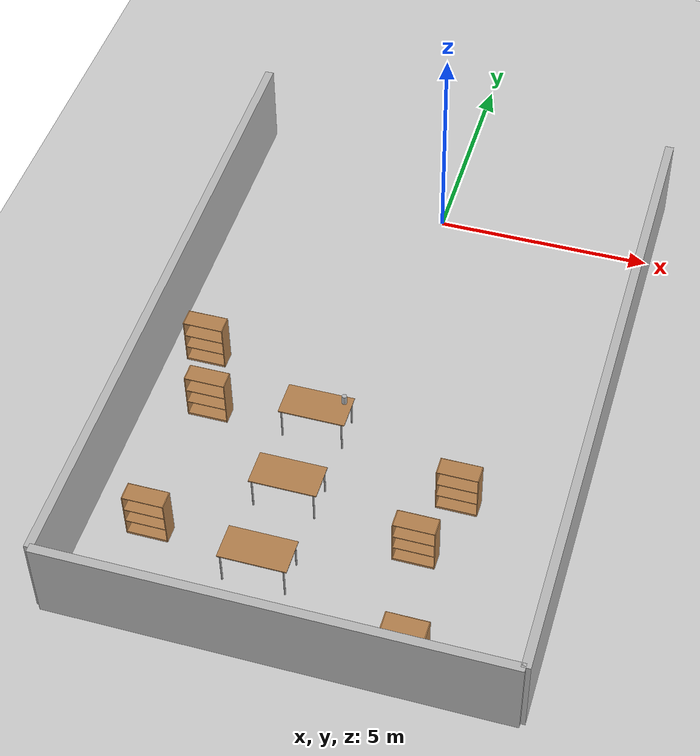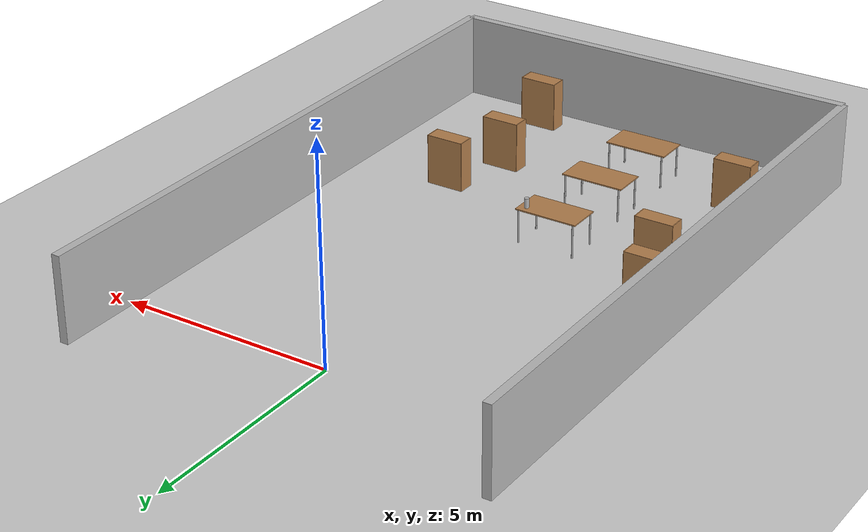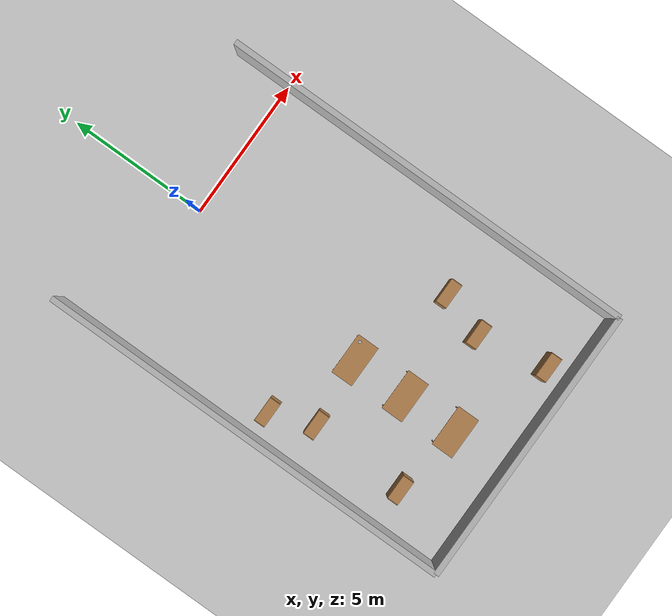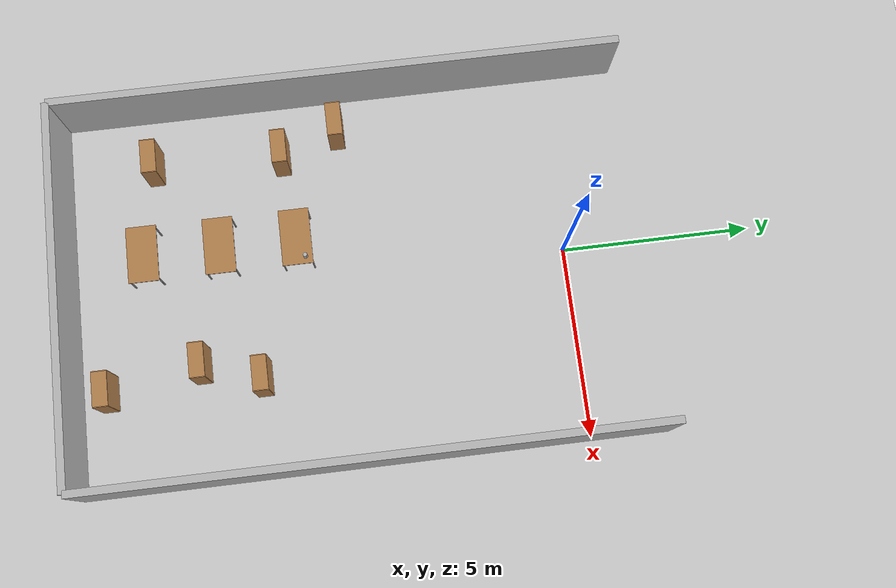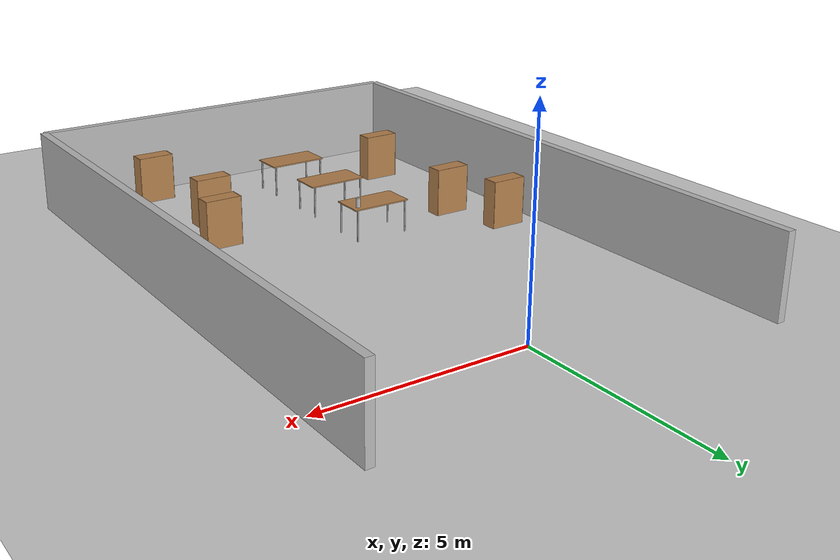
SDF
<sdf version="1.7">
 <world name="default">
  <model name="ground_plane">
   <static>1</static>
   <link name="link">
    <collision name="collision">
     <geometry><plane><normal>0 0 1</normal><size>100 100</size></plane></geometry>
     <surface><friction><ode><mu>100</mu><mu2>50</mu2></ode></friction></surface>
    </collision>
    <visual name="visual">
     <cast_shadows>0</cast_shadows>
     <geometry><plane><normal>0 0 1</normal><size>100 100</size></plane></geometry>
     <material>
      <script><uri>file://media/materials/scripts/gazebo.material</uri><name>Gazebo/Grey</name></script>
     </material>
    </visual>
    <velocity_decay><linear>0</linear><angular>0</angular></velocity_decay>
   </link>
  </model>
  <model name="wall_1_model">
   <pose>0 -13 1 0 -0 0</pose>
   <static>1</static>
   <link name="wall_1_body">
    <inertial>
     <mass>1</mass>
     <inertia><ixx>1</ixx><ixy>0</ixy><ixz>0</ixz><iyy>1</iyy><iyz>0</iyz><izz>1</izz></inertia>
    </inertial>
    <collision name="collision"><geometry><box><size>10 0.2 2</size></box></geometry></collision>
    <visual name="visual"><geometry><box><size>10 0.2 2</size></box></geometry></visual>
    <velocity_decay><linear>0</linear><angular>0</angular></velocity_decay>
   </link>
  </model>
  <model name="wall_3_model">
   <pose>-5 -5.5 1 0 -0 0</pose>
   <static>1</static>
   <link name="wall_3_body">
    <inertial>
     <mass>1</mass>
     <inertia><ixx>1</ixx><ixy>0</ixy><ixz>0</ixz><iyy>1</iyy><iyz>0</iyz><izz>1</izz></inertia>
    </inertial>
    <collision name="collision"><geometry><box><size>0.2 15 2</size></box></geometry></collision>
    <visual name="visual"><geometry><box><size>0.2 15 2</size></box></geometry></visual>
    <velocity_decay><linear>0</linear><angular>0</angular></velocity_decay>
   </link>
  </model>
  <model name="wall_4_model">
   <pose>5 -5.5 1 0 -0 0</pose>
   <static>1</static>
   <link name="wall_4_body">
    <inertial>
     <mass>1</mass>
     <inertia><ixx>1</ixx><ixy>0</ixy><ixz>0</ixz><iyy>1</iyy><iyz>0</iyz><izz>1</izz></inertia>
    </inertial>
    <collision name="collision"><geometry><box><size>0.2 15 2</size></box></geometry></collision>
    <visual name="visual"><geometry><box><size>0.2 15 2</size></box></geometry></visual>
    <velocity_decay><linear>0</linear><angular>0</angular></velocity_decay>
   </link>
  </model>
  <model name="bookshelf">
   <static>0</static>
   <link name="link">
    <inertial>
     <mass>1</mass>
     <inertia><ixx>1</ixx><ixy>0</ixy><ixz>0</ixz><iyy>1</iyy><iyz>0</iyz><izz>1</izz></inertia>
    </inertial>
    <collision name="back">
     <pose>0 0.005 0.6 0 -0 0</pose>
     <geometry><box><size>0.9 0.01 1.2</size></box></geometry>
    </collision>
    <visual name="visual1">
     <pose>0 0.005 0.6 0 -0 0</pose>
     <geometry><box><size>0.9 0.01 1.2</size></box></geometry>
     <material>
      <script><uri>file://media/materials/scripts/gazebo.material</uri><name>Gazebo/Wood</name></script>
     </material>
    </visual>
    <collision name="left_side">
     <pose>0.45 -0.195 0.6 0 -0 0</pose>
     <geometry><box><size>0.02 0.4 1.2</size></box></geometry>
    </collision>
    <visual name="visual2">
     <pose>0.45 -0.195 0.6 0 -0 0</pose>
     <geometry><box><size>0.02 0.4 1.2</size></box></geometry>
     <material>
      <script><uri>file://media/materials/scripts/gazebo.material</uri><name>Gazebo/Wood</name></script>
     </material>
    </visual>
    <collision name="right_side">
     <pose>-0.45 -0.195 0.6 0 -0 0</pose>
     <geometry><box><size>0.02 0.4 1.2</size></box></geometry>
    </collision>
    <visual name="visual3">
     <pose>-0.45 -0.195 0.6 0 -0 0</pose>
     <geometry><box><size>0.02 0.4 1.2</size></box></geometry>
     <material>
      <script><uri>file://media/materials/scripts/gazebo.material</uri><name>Gazebo/Wood</name></script>
     </material>
    </visual>
    <collision name="bottom">
     <pose>0 -0.195 0.03 0 -0 0</pose>
     <geometry><box><size>0.88 0.4 0.06</size></box></geometry>
    </collision>
    <visual name="visual4">
     <pose>0 -0.195 0.03 0 -0 0</pose>
     <geometry><box><size>0.88 0.4 0.06</size></box></geometry>
     <material>
      <script><uri>file://media/materials/scripts/gazebo.material</uri><name>Gazebo/Wood</name></script>
     </material>
    </visual>
    <collision name="top">
     <pose>0 -0.195 1.19 0 -0 0</pose>
     <geometry><box><size>0.88 0.4 0.02</size></box></geometry>
    </collision>
    <visual name="visual5">
     <pose>0 -0.195 1.19 0 -0 0</pose>
     <geometry><box><size>0.88 0.4 0.02</size></box></geometry>
     <material>
      <script><uri>file://media/materials/scripts/gazebo.material</uri><name>Gazebo/Wood</name></script>
     </material>
    </visual>
    <collision name="low_shelf">
     <pose>0 -0.195 0.43 0 -0 0</pose>
     <geometry><box><size>0.88 0.4 0.02</size></box></geometry>
    </collision>
    <visual name="visual6">
     <pose>0 -0.195 0.43 0 -0 0</pose>
     <geometry><box><size>0.88 0.4 0.02</size></box></geometry>
     <material>
      <script><uri>file://media/materials/scripts/gazebo.material</uri><name>Gazebo/Wood</name></script>
     </material>
    </visual>
    <collision name="high_shelf">
     <pose>0 -0.195 0.8 0 -0 0</pose>
     <geometry><box><size>0.88 0.4 0.02</size></box></geometry>
    </collision>
    <visual name="visual7">
     <pose>0 -0.195 0.8 0 -0 0</pose>
     <geometry><box><size>0.88 0.4 0.02</size></box></geometry>
     <material>
      <script><uri>file://media/materials/scripts/gazebo.material</uri><name>Gazebo/Wood</name></script>
     </material>
    </visual>
    <velocity_decay><linear>0</linear><angular>0</angular></velocity_decay>
   </link>
   <pose>2 -9.55401 0 -4e-05 -0 -0</pose>
  </model>
  <model name="table">
   <static>0</static>
   <link name="link">
    <collision name="surface">
     <pose>0 0 0.9 0 -0 0</pose>
     <geometry><box><size>1.5 0.8 0.03</size></box></geometry>
    </collision>
    <visual name="visual1">
     <pose>0 0 0.9 0 -0 0</pose>
     <geometry><box><size>1.5 0.8 0.03</size></box></geometry>
     <material>
      <script><uri>file://media/materials/scripts/gazebo.material</uri><name>Gazebo/Wood</name></script>
     </material>
    </visual>
    <collision name="front_left_leg">
     <pose>0.68 0.38 0.5 0 -0 0</pose>
     <geometry><cylinder><radius>0.02</radius><length>0.8</length></cylinder></geometry>
    </collision>
    <visual name="front_left_leg">
     <pose>0.68 0.38 0.5 0 -0 0</pose>
     <geometry><cylinder><radius>0.02</radius><length>0.8</length></cylinder></geometry>
     <material>
      <script><uri>file://media/materials/scripts/gazebo.material</uri><name>Gazebo/Grey</name></script>
     </material>
    </visual>
    <collision name="front_right_leg">
     <pose>0.68 -0.38 0.5 0 -0 0</pose>
     <geometry><cylinder><radius>0.02</radius><length>0.8</length></cylinder></geometry>
    </collision>
    <visual name="front_right_leg">
     <pose>0.68 -0.38 0.5 0 -0 0</pose>
     <geometry><cylinder><radius>0.02</radius><length>0.8</length></cylinder></geometry>
     <material>
      <script><uri>file://media/materials/scripts/gazebo.material</uri><name>Gazebo/Grey</name></script>
     </material>
    </visual>
    <collision name="back_right_leg">
     <pose>-0.68 -0.38 0.5 0 -0 0</pose>
     <geometry><cylinder><radius>0.02</radius><length>0.8</length></cylinder></geometry>
    </collision>
    <visual name="back_right_leg">
     <pose>-0.68 -0.38 0.5 0 -0 0</pose>
     <geometry><cylinder><radius>0.02</radius><length>0.8</length></cylinder></geometry>
     <material>
      <script><uri>file://media/materials/scripts/gazebo.material</uri><name>Gazebo/Grey</name></script>
     </material>
    </visual>
    <collision name="back_left_leg">
     <pose>-0.68 0.38 0.5 0 -0 0</pose>
     <geometry><cylinder><radius>0.02</radius><length>0.8</length></cylinder></geometry>
    </collision>
    <visual name="back_left_leg">
     <pose>-0.68 0.38 0.5 0 -0 0</pose>
     <geometry><cylinder><radius>0.02</radius><length>0.8</length></cylinder></geometry>
     <material>
      <script><uri>file://media/materials/scripts/gazebo.material</uri><name>Gazebo/Grey</name></script>
     </material>
    </visual>
    <velocity_decay><linear>0</linear><angular>0</angular></velocity_decay>
    <inertial>
     <inertia><ixx>1</ixx><ixy>0</ixy><ixz>0</ixz><iyy>1</iyy><iyz>0</iyz><izz>1</izz></inertia>
     <mass>1</mass>
    </inertial>
   </link>
   <pose>-1 -9.00004 -0.1 0 -0 -0.000188</pose>
  </model>
  <model name="bookshelf_2">
   <static>0</static>
   <link name="link">
    <inertial>
     <mass>1</mass>
     <inertia><ixx>1</ixx><ixy>0</ixy><ixz>0</ixz><iyy>1</iyy><iyz>0</iyz><izz>1</izz></inertia>
    </inertial>
    <collision name="back">
     <pose>0 0.005 0.6 0 -0 0</pose>
     <geometry><box><size>0.9 0.01 1.2</size></box></geometry>
    </collision>
    <visual name="visual1">
     <pose>0 0.005 0.6 0 -0 0</pose>
     <geometry><box><size>0.9 0.01 1.2</size></box></geometry>
     <material>
      <script><uri>file://media/materials/scripts/gazebo.material</uri><name>Gazebo/Wood</name></script>
     </material>
    </visual>
    <collision name="left_side">
     <pose>0.45 -0.195 0.6 0 -0 0</pose>
     <geometry><box><size>0.02 0.4 1.2</size></box></geometry>
    </collision>
    <visual name="visual2">
     <pose>0.45 -0.195 0.6 0 -0 0</pose>
     <geometry><box><size>0.02 0.4 1.2</size></box></geometry>
     <material>
      <script><uri>file://media/materials/scripts/gazebo.material</uri><name>Gazebo/Wood</name></script>
     </material>
    </visual>
    <collision name="right_side">
     <pose>-0.45 -0.195 0.6 0 -0 0</pose>
     <geometry><box><size>0.02 0.4 1.2</size></box></geometry>
    </collision>
    <visual name="visual3">
     <pose>-0.45 -0.195 0.6 0 -0 0</pose>
     <geometry><box><size>0.02 0.4 1.2</size></box></geometry>
     <material>
      <script><uri>file://media/materials/scripts/gazebo.material</uri><name>Gazebo/Wood</name></script>
     </material>
    </visual>
    <collision name="bottom">
     <pose>0 -0.195 0.03 0 -0 0</pose>
     <geometry><box><size>0.88 0.4 0.06</size></box></geometry>
    </collision>
    <visual name="visual4">
     <pose>0 -0.195 0.03 0 -0 0</pose>
     <geometry><box><size>0.88 0.4 0.06</size></box></geometry>
     <material>
      <script><uri>file://media/materials/scripts/gazebo.material</uri><name>Gazebo/Wood</name></script>
     </material>
    </visual>
    <collision name="top">
     <pose>0 -0.195 1.19 0 -0 0</pose>
     <geometry><box><size>0.88 0.4 0.02</size></box></geometry>
    </collision>
    <visual name="visual5">
     <pose>0 -0.195 1.19 0 -0 0</pose>
     <geometry><box><size>0.88 0.4 0.02</size></box></geometry>
     <material>
      <script><uri>file://media/materials/scripts/gazebo.material</uri><name>Gazebo/Wood</name></script>
     </material>
    </visual>
    <collision name="low_shelf">
     <pose>0 -0.195 0.43 0 -0 0</pose>
     <geometry><box><size>0.88 0.4 0.02</size></box></geometry>
    </collision>
    <visual name="visual6">
     <pose>0 -0.195 0.43 0 -0 0</pose>
     <geometry><box><size>0.88 0.4 0.02</size></box></geometry>
     <material>
      <script><uri>file://media/materials/scripts/gazebo.material</uri><name>Gazebo/Wood</name></script>
     </material>
    </visual>
    <collision name="high_shelf">
     <pose>0 -0.195 0.8 0 -0 0</pose>
     <geometry><box><size>0.88 0.4 0.02</size></box></geometry>
    </collision>
    <visual name="visual7">
     <pose>0 -0.195 0.8 0 -0 0</pose>
     <geometry><box><size>0.88 0.4 0.02</size></box></geometry>
     <material>
      <script><uri>file://media/materials/scripts/gazebo.material</uri><name>Gazebo/Wood</name></script>
     </material>
    </visual>
    <velocity_decay><linear>0</linear><angular>0</angular></velocity_decay>
   </link>
   <pose>-3.41849 -7 0 -3.1e-05 -0 -0</pose>
  </model>
  <model name="table_0">
   <static>0</static>
   <link name="link">
    <collision name="surface">
     <pose>0 0 0.9 0 -0 0</pose>
     <geometry><box><size>1.5 0.8 0.03</size></box></geometry>
    </collision>
    <visual name="visual1">
     <pose>0 0 0.9 0 -0 0</pose>
     <geometry><box><size>1.5 0.8 0.03</size></box></geometry>
     <material>
      <script><uri>file://media/materials/scripts/gazebo.material</uri><name>Gazebo/Wood</name></script>
     </material>
    </visual>
    <collision name="front_left_leg">
     <pose>0.68 0.38 0.5 0 -0 0</pose>
     <geometry><cylinder><radius>0.02</radius><length>0.8</length></cylinder></geometry>
    </collision>
    <visual name="front_left_leg">
     <pose>0.68 0.38 0.5 0 -0 0</pose>
     <geometry><cylinder><radius>0.02</radius><length>0.8</length></cylinder></geometry>
     <material>
      <script><uri>file://media/materials/scripts/gazebo.material</uri><name>Gazebo/Grey</name></script>
     </material>
    </visual>
    <collision name="front_right_leg">
     <pose>0.68 -0.38 0.5 0 -0 0</pose>
     <geometry><cylinder><radius>0.02</radius><length>0.8</length></cylinder></geometry>
    </collision>
    <visual name="front_right_leg">
     <pose>0.68 -0.38 0.5 0 -0 0</pose>
     <geometry><cylinder><radius>0.02</radius><length>0.8</length></cylinder></geometry>
     <material>
      <script><uri>file://media/materials/scripts/gazebo.material</uri><name>Gazebo/Grey</name></script>
     </material>
    </visual>
    <collision name="back_right_leg">
     <pose>-0.68 -0.38 0.5 0 -0 0</pose>
     <geometry><cylinder><radius>0.02</radius><length>0.8</length></cylinder></geometry>
    </collision>
    <visual name="back_right_leg">
     <pose>-0.68 -0.38 0.5 0 -0 0</pose>
     <geometry><cylinder><radius>0.02</radius><length>0.8</length></cylinder></geometry>
     <material>
      <script><uri>file://media/materials/scripts/gazebo.material</uri><name>Gazebo/Grey</name></script>
     </material>
    </visual>
    <collision name="back_left_leg">
     <pose>-0.68 0.38 0.5 0 -0 0</pose>
     <geometry><cylinder><radius>0.02</radius><length>0.8</length></cylinder></geometry>
    </collision>
    <visual name="back_left_leg">
     <pose>-0.68 0.38 0.5 0 -0 0</pose>
     <geometry><cylinder><radius>0.02</radius><length>0.8</length></cylinder></geometry>
     <material>
      <script><uri>file://media/materials/scripts/gazebo.material</uri><name>Gazebo/Grey</name></script>
     </material>
    </visual>
    <velocity_decay><linear>0</linear><angular>0</angular></velocity_decay>
    <inertial>
     <inertia><ixx>1</ixx><ixy>0</ixy><ixz>0</ixz><iyy>1</iyy><iyz>0</iyz><izz>1</izz></inertia>
     <mass>1</mass>
    </inertial>
   </link>
   <pose>-1.00005 -6.99855 -0.119424 -0.00203 1.1e-05 -2.2e-05</pose>
  </model>
  <model name="table_1">
   <static>0</static>
   <link name="link">
    <collision name="surface">
     <pose>0 0 0.9 0 -0 0</pose>
     <geometry><box><size>1.5 0.8 0.03</size></box></geometry>
    </collision>
    <visual name="visual1">
     <pose>0 0 0.9 0 -0 0</pose>
     <geometry><box><size>1.5 0.8 0.03</size></box></geometry>
     <material>
      <script><uri>file://media/materials/scripts/gazebo.material</uri><name>Gazebo/Wood</name></script>
     </material>
    </visual>
    <collision name="front_left_leg">
     <pose>0.68 0.38 0.5 0 -0 0</pose>
     <geometry><cylinder><radius>0.02</radius><length>0.8</length></cylinder></geometry>
    </collision>
    <visual name="front_left_leg">
     <pose>0.68 0.38 0.5 0 -0 0</pose>
     <geometry><cylinder><radius>0.02</radius><length>0.8</length></cylinder></geometry>
     <material>
      <script><uri>file://media/materials/scripts/gazebo.material</uri><name>Gazebo/Grey</name></script>
     </material>
    </visual>
    <collision name="front_right_leg">
     <pose>0.68 -0.38 0.5 0 -0 0</pose>
     <geometry><cylinder><radius>0.02</radius><length>0.8</length></cylinder></geometry>
    </collision>
    <visual name="front_right_leg">
     <pose>0.68 -0.38 0.5 0 -0 0</pose>
     <geometry><cylinder><radius>0.02</radius><length>0.8</length></cylinder></geometry>
     <material>
      <script><uri>file://media/materials/scripts/gazebo.material</uri><name>Gazebo/Grey</name></script>
     </material>
    </visual>
    <collision name="back_right_leg">
     <pose>-0.68 -0.38 0.5 0 -0 0</pose>
     <geometry><cylinder><radius>0.02</radius><length>0.8</length></cylinder></geometry>
    </collision>
    <visual name="back_right_leg">
     <pose>-0.68 -0.38 0.5 0 -0 0</pose>
     <geometry><cylinder><radius>0.02</radius><length>0.8</length></cylinder></geometry>
     <material>
      <script><uri>file://media/materials/scripts/gazebo.material</uri><name>Gazebo/Grey</name></script>
     </material>
    </visual>
    <collision name="back_left_leg">
     <pose>-0.68 0.38 0.5 0 -0 0</pose>
     <geometry><cylinder><radius>0.02</radius><length>0.8</length></cylinder></geometry>
    </collision>
    <visual name="back_left_leg">
     <pose>-0.68 0.38 0.5 0 -0 0</pose>
     <geometry><cylinder><radius>0.02</radius><length>0.8</length></cylinder></geometry>
     <material>
      <script><uri>file://media/materials/scripts/gazebo.material</uri><name>Gazebo/Grey</name></script>
     </material>
    </visual>
    <velocity_decay><linear>0</linear><angular>0</angular></velocity_decay>
    <inertial>
     <inertia><ixx>1</ixx><ixy>0</ixy><ixz>0</ixz><iyy>1</iyy><iyz>0</iyz><izz>1</izz></inertia>
     <mass>1</mass>
    </inertial>
   </link>
   <pose>-1 -11 -0.1 0 -0 -0.000188</pose>
  </model>
  <model name="bookshelf_3">
   <static>0</static>
   <link name="link">
    <inertial>
     <mass>1</mass>
     <inertia><ixx>1</ixx><ixy>0</ixy><ixz>0</ixz><iyy>1</iyy><iyz>0</iyz><izz>1</izz></inertia>
    </inertial>
    <collision name="back">
     <pose>0 0.005 0.6 0 -0 0</pose>
     <geometry><box><size>0.9 0.01 1.2</size></box></geometry>
    </collision>
    <visual name="visual1">
     <pose>0 0.005 0.6 0 -0 0</pose>
     <geometry><box><size>0.9 0.01 1.2</size></box></geometry>
     <material>
      <script><uri>file://media/materials/scripts/gazebo.material</uri><name>Gazebo/Wood</name></script>
     </material>
    </visual>
    <collision name="left_side">
     <pose>0.45 -0.195 0.6 0 -0 0</pose>
     <geometry><box><size>0.02 0.4 1.2</size></box></geometry>
    </collision>
    <visual name="visual2">
     <pose>0.45 -0.195 0.6 0 -0 0</pose>
     <geometry><box><size>0.02 0.4 1.2</size></box></geometry>
     <material>
      <script><uri>file://media/materials/scripts/gazebo.material</uri><name>Gazebo/Wood</name></script>
     </material>
    </visual>
    <collision name="right_side">
     <pose>-0.45 -0.195 0.6 0 -0 0</pose>
     <geometry><box><size>0.02 0.4 1.2</size></box></geometry>
    </collision>
    <visual name="visual3">
     <pose>-0.45 -0.195 0.6 0 -0 0</pose>
     <geometry><box><size>0.02 0.4 1.2</size></box></geometry>
     <material>
      <script><uri>file://media/materials/scripts/gazebo.material</uri><name>Gazebo/Wood</name></script>
     </material>
    </visual>
    <collision name="bottom">
     <pose>0 -0.195 0.03 0 -0 0</pose>
     <geometry><box><size>0.88 0.4 0.06</size></box></geometry>
    </collision>
    <visual name="visual4">
     <pose>0 -0.195 0.03 0 -0 0</pose>
     <geometry><box><size>0.88 0.4 0.06</size></box></geometry>
     <material>
      <script><uri>file://media/materials/scripts/gazebo.material</uri><name>Gazebo/Wood</name></script>
     </material>
    </visual>
    <collision name="top">
     <pose>0 -0.195 1.19 0 -0 0</pose>
     <geometry><box><size>0.88 0.4 0.02</size></box></geometry>
    </collision>
    <visual name="visual5">
     <pose>0 -0.195 1.19 0 -0 0</pose>
     <geometry><box><size>0.88 0.4 0.02</size></box></geometry>
     <material>
      <script><uri>file://media/materials/scripts/gazebo.material</uri><name>Gazebo/Wood</name></script>
     </material>
    </visual>
    <collision name="low_shelf">
     <pose>0 -0.195 0.43 0 -0 0</pose>
     <geometry><box><size>0.88 0.4 0.02</size></box></geometry>
    </collision>
    <visual name="visual6">
     <pose>0 -0.195 0.43 0 -0 0</pose>
     <geometry><box><size>0.88 0.4 0.02</size></box></geometry>
     <material>
      <script><uri>file://media/materials/scripts/gazebo.material</uri><name>Gazebo/Wood</name></script>
     </material>
    </visual>
    <collision name="high_shelf">
     <pose>0 -0.195 0.8 0 -0 0</pose>
     <geometry><box><size>0.88 0.4 0.02</size></box></geometry>
    </collision>
    <visual name="visual7">
     <pose>0 -0.195 0.8 0 -0 0</pose>
     <geometry><box><size>0.88 0.4 0.02</size></box></geometry>
     <material>
      <script><uri>file://media/materials/scripts/gazebo.material</uri><name>Gazebo/Wood</name></script>
     </material>
    </visual>
    <velocity_decay><linear>0</linear><angular>0</angular></velocity_decay>
   </link>
   <pose>2.45055 -12 0 -2.8e-05 0 0</pose>
  </model>
  <model name="bookshelf_4">
   <static>0</static>
   <link name="link">
    <inertial>
     <mass>1</mass>
     <inertia><ixx>1</ixx><ixy>0</ixy><ixz>0</ixz><iyy>1</iyy><iyz>0</iyz><izz>1</izz></inertia>
    </inertial>
    <collision name="back">
     <pose>0 0.005 0.6 0 -0 0</pose>
     <geometry><box><size>0.9 0.01 1.2</size></box></geometry>
    </collision>
    <visual name="visual1">
     <pose>0 0.005 0.6 0 -0 0</pose>
     <geometry><box><size>0.9 0.01 1.2</size></box></geometry>
     <material>
      <script><uri>file://media/materials/scripts/gazebo.material</uri><name>Gazebo/Wood</name></script>
     </material>
    </visual>
    <collision name="left_side">
     <pose>0.45 -0.195 0.6 0 -0 0</pose>
     <geometry><box><size>0.02 0.4 1.2</size></box></geometry>
    </collision>
    <visual name="visual2">
     <pose>0.45 -0.195 0.6 0 -0 0</pose>
     <geometry><box><size>0.02 0.4 1.2</size></box></geometry>
     <material>
      <script><uri>file://media/materials/scripts/gazebo.material</uri><name>Gazebo/Wood</name></script>
     </material>
    </visual>
    <collision name="right_side">
     <pose>-0.45 -0.195 0.6 0 -0 0</pose>
     <geometry><box><size>0.02 0.4 1.2</size></box></geometry>
    </collision>
    <visual name="visual3">
     <pose>-0.45 -0.195 0.6 0 -0 0</pose>
     <geometry><box><size>0.02 0.4 1.2</size></box></geometry>
     <material>
      <script><uri>file://media/materials/scripts/gazebo.material</uri><name>Gazebo/Wood</name></script>
     </material>
    </visual>
    <collision name="bottom">
     <pose>0 -0.195 0.03 0 -0 0</pose>
     <geometry><box><size>0.88 0.4 0.06</size></box></geometry>
    </collision>
    <visual name="visual4">
     <pose>0 -0.195 0.03 0 -0 0</pose>
     <geometry><box><size>0.88 0.4 0.06</size></box></geometry>
     <material>
      <script><uri>file://media/materials/scripts/gazebo.material</uri><name>Gazebo/Wood</name></script>
     </material>
    </visual>
    <collision name="top">
     <pose>0 -0.195 1.19 0 -0 0</pose>
     <geometry><box><size>0.88 0.4 0.02</size></box></geometry>
    </collision>
    <visual name="visual5">
     <pose>0 -0.195 1.19 0 -0 0</pose>
     <geometry><box><size>0.88 0.4 0.02</size></box></geometry>
     <material>
      <script><uri>file://media/materials/scripts/gazebo.material</uri><name>Gazebo/Wood</name></script>
     </material>
    </visual>
    <collision name="low_shelf">
     <pose>0 -0.195 0.43 0 -0 0</pose>
     <geometry><box><size>0.88 0.4 0.02</size></box></geometry>
    </collision>
    <visual name="visual6">
     <pose>0 -0.195 0.43 0 -0 0</pose>
     <geometry><box><size>0.88 0.4 0.02</size></box></geometry>
     <material>
      <script><uri>file://media/materials/scripts/gazebo.material</uri><name>Gazebo/Wood</name></script>
     </material>
    </visual>
    <collision name="high_shelf">
     <pose>0 -0.195 0.8 0 -0 0</pose>
     <geometry><box><size>0.88 0.4 0.02</size></box></geometry>
    </collision>
    <visual name="visual7">
     <pose>0 -0.195 0.8 0 -0 0</pose>
     <geometry><box><size>0.88 0.4 0.02</size></box></geometry>
     <material>
      <script><uri>file://media/materials/scripts/gazebo.material</uri><name>Gazebo/Wood</name></script>
     </material>
    </visual>
    <velocity_decay><linear>0</linear><angular>0</angular></velocity_decay>
   </link>
   <pose>2.51316 -8 1e-06 -5.3e-05 -2e-06 0</pose>
  </model>
  <model name="bookshelf_5">
   <static>0</static>
   <link name="link">
    <inertial>
     <mass>1</mass>
     <inertia><ixx>1</ixx><ixy>0</ixy><ixz>0</ixz><iyy>1</iyy><iyz>0</iyz><izz>1</izz></inertia>
    </inertial>
    <collision name="back">
     <pose>0 0.005 0.6 0 -0 0</pose>
     <geometry><box><size>0.9 0.01 1.2</size></box></geometry>
    </collision>
    <visual name="visual1">
     <pose>0 0.005 0.6 0 -0 0</pose>
     <geometry><box><size>0.9 0.01 1.2</size></box></geometry>
     <material>
      <script><uri>file://media/materials/scripts/gazebo.material</uri><name>Gazebo/Wood</name></script>
     </material>
    </visual>
    <collision name="left_side">
     <pose>0.45 -0.195 0.6 0 -0 0</pose>
     <geometry><box><size>0.02 0.4 1.2</size></box></geometry>
    </collision>
    <visual name="visual2">
     <pose>0.45 -0.195 0.6 0 -0 0</pose>
     <geometry><box><size>0.02 0.4 1.2</size></box></geometry>
     <material>
      <script><uri>file://media/materials/scripts/gazebo.material</uri><name>Gazebo/Wood</name></script>
     </material>
    </visual>
    <collision name="right_side">
     <pose>-0.45 -0.195 0.6 0 -0 0</pose>
     <geometry><box><size>0.02 0.4 1.2</size></box></geometry>
    </collision>
    <visual name="visual3">
     <pose>-0.45 -0.195 0.6 0 -0 0</pose>
     <geometry><box><size>0.02 0.4 1.2</size></box></geometry>
     <material>
      <script><uri>file://media/materials/scripts/gazebo.material</uri><name>Gazebo/Wood</name></script>
     </material>
    </visual>
    <collision name="bottom">
     <pose>0 -0.195 0.03 0 -0 0</pose>
     <geometry><box><size>0.88 0.4 0.06</size></box></geometry>
    </collision>
    <visual name="visual4">
     <pose>0 -0.195 0.03 0 -0 0</pose>
     <geometry><box><size>0.88 0.4 0.06</size></box></geometry>
     <material>
      <script><uri>file://media/materials/scripts/gazebo.material</uri><name>Gazebo/Wood</name></script>
     </material>
    </visual>
    <collision name="top">
     <pose>0 -0.195 1.19 0 -0 0</pose>
     <geometry><box><size>0.88 0.4 0.02</size></box></geometry>
    </collision>
    <visual name="visual5">
     <pose>0 -0.195 1.19 0 -0 0</pose>
     <geometry><box><size>0.88 0.4 0.02</size></box></geometry>
     <material>
      <script><uri>file://media/materials/scripts/gazebo.material</uri><name>Gazebo/Wood</name></script>
     </material>
    </visual>
    <collision name="low_shelf">
     <pose>0 -0.195 0.43 0 -0 0</pose>
     <geometry><box><size>0.88 0.4 0.02</size></box></geometry>
    </collision>
    <visual name="visual6">
     <pose>0 -0.195 0.43 0 -0 0</pose>
     <geometry><box><size>0.88 0.4 0.02</size></box></geometry>
     <material>
      <script><uri>file://media/materials/scripts/gazebo.material</uri><name>Gazebo/Wood</name></script>
     </material>
    </visual>
    <collision name="high_shelf">
     <pose>0 -0.195 0.8 0 -0 0</pose>
     <geometry><box><size>0.88 0.4 0.02</size></box></geometry>
    </collision>
    <visual name="visual7">
     <pose>0 -0.195 0.8 0 -0 0</pose>
     <geometry><box><size>0.88 0.4 0.02</size></box></geometry>
     <material>
      <script><uri>file://media/materials/scripts/gazebo.material</uri><name>Gazebo/Wood</name></script>
     </material>
    </visual>
    <velocity_decay><linear>0</linear><angular>0</angular></velocity_decay>
   </link>
   <pose>-3.53929 -10.4222 1e-06 -1.2e-05 -1e-06 0</pose>
  </model>
  <model name="bookshelf_6">
   <static>0</static>
   <link name="link">
    <inertial>
     <mass>1</mass>
     <inertia><ixx>1</ixx><ixy>0</ixy><ixz>0</ixz><iyy>1</iyy><iyz>0</iyz><izz>1</izz></inertia>
    </inertial>
    <collision name="back">
     <pose>0 0.005 0.6 0 -0 0</pose>
     <geometry><box><size>0.9 0.01 1.2</size></box></geometry>
    </collision>
    <visual name="visual1">
     <pose>0 0.005 0.6 0 -0 0</pose>
     <geometry><box><size>0.9 0.01 1.2</size></box></geometry>
     <material>
      <script><uri>file://media/materials/scripts/gazebo.material</uri><name>Gazebo/Wood</name></script>
     </material>
    </visual>
    <collision name="left_side">
     <pose>0.45 -0.195 0.6 0 -0 0</pose>
     <geometry><box><size>0.02 0.4 1.2</size></box></geometry>
    </collision>
    <visual name="visual2">
     <pose>0.45 -0.195 0.6 0 -0 0</pose>
     <geometry><box><size>0.02 0.4 1.2</size></box></geometry>
     <material>
      <script><uri>file://media/materials/scripts/gazebo.material</uri><name>Gazebo/Wood</name></script>
     </material>
    </visual>
    <collision name="right_side">
     <pose>-0.45 -0.195 0.6 0 -0 0</pose>
     <geometry><box><size>0.02 0.4 1.2</size></box></geometry>
    </collision>
    <visual name="visual3">
     <pose>-0.45 -0.195 0.6 0 -0 0</pose>
     <geometry><box><size>0.02 0.4 1.2</size></box></geometry>
     <material>
      <script><uri>file://media/materials/scripts/gazebo.material</uri><name>Gazebo/Wood</name></script>
     </material>
    </visual>
    <collision name="bottom">
     <pose>0 -0.195 0.03 0 -0 0</pose>
     <geometry><box><size>0.88 0.4 0.06</size></box></geometry>
    </collision>
    <visual name="visual4">
     <pose>0 -0.195 0.03 0 -0 0</pose>
     <geometry><box><size>0.88 0.4 0.06</size></box></geometry>
     <material>
      <script><uri>file://media/materials/scripts/gazebo.material</uri><name>Gazebo/Wood</name></script>
     </material>
    </visual>
    <collision name="top">
     <pose>0 -0.195 1.19 0 -0 0</pose>
     <geometry><box><size>0.88 0.4 0.02</size></box></geometry>
    </collision>
    <visual name="visual5">
     <pose>0 -0.195 1.19 0 -0 0</pose>
     <geometry><box><size>0.88 0.4 0.02</size></box></geometry>
     <material>
      <script><uri>file://media/materials/scripts/gazebo.material</uri><name>Gazebo/Wood</name></script>
     </material>
    </visual>
    <collision name="low_shelf">
     <pose>0 -0.195 0.43 0 -0 0</pose>
     <geometry><box><size>0.88 0.4 0.02</size></box></geometry>
    </collision>
    <visual name="visual6">
     <pose>0 -0.195 0.43 0 -0 0</pose>
     <geometry><box><size>0.88 0.4 0.02</size></box></geometry>
     <material>
      <script><uri>file://media/materials/scripts/gazebo.material</uri><name>Gazebo/Wood</name></script>
     </material>
    </visual>
    <collision name="high_shelf">
     <pose>0 -0.195 0.8 0 -0 0</pose>
     <geometry><box><size>0.88 0.4 0.02</size></box></geometry>
    </collision>
    <visual name="visual7">
     <pose>0 -0.195 0.8 0 -0 0</pose>
     <geometry><box><size>0.88 0.4 0.02</size></box></geometry>
     <material>
      <script><uri>file://media/materials/scripts/gazebo.material</uri><name>Gazebo/Wood</name></script>
     </material>
    </visual>
    <velocity_decay><linear>0</linear><angular>0</angular></velocity_decay>
   </link>
   <pose>-4 -5.47465 0 -4.1e-05 -0 -0</pose>
  </model>
  <model name="beer">
   <link name="link">
    <pose>0 0 0.115 0 -0 0</pose>
    <inertial>
     <mass>0.39</mass>
     <inertia><ixx>0.00058</ixx><ixy>0</ixy><ixz>0</ixz><iyy>0.00058</iyy><iyz>0</iyz><izz>0.00019</izz></inertia>
    </inertial>
    <collision name="collision">
     <geometry><cylinder><radius>0.055</radius><length>0.23</length></cylinder></geometry>
    </collision>
    <visual name="visual">
     <geometry><cylinder><radius>0.055</radius><length>0.23</length></cylinder></geometry>
     <material>
      <script>
       <uri>model://beer/materials/scripts</uri>
       <uri>model://beer/materials/textures</uri>
       <name>Beer/Diffuse</name>
      </script>
     </material>
    </visual>
   </link>
   <pose>-0.43 -6.77731 0.795121 -0.002167 0.000159 0.019821</pose>
  </model>
 </world>
</sdf>
